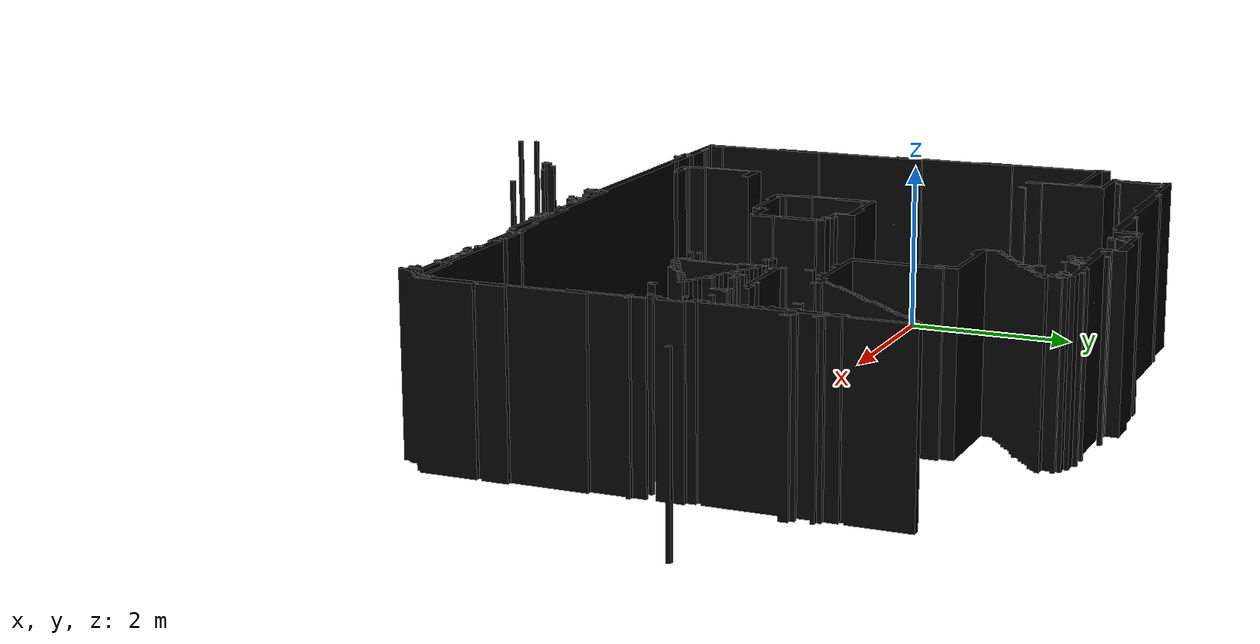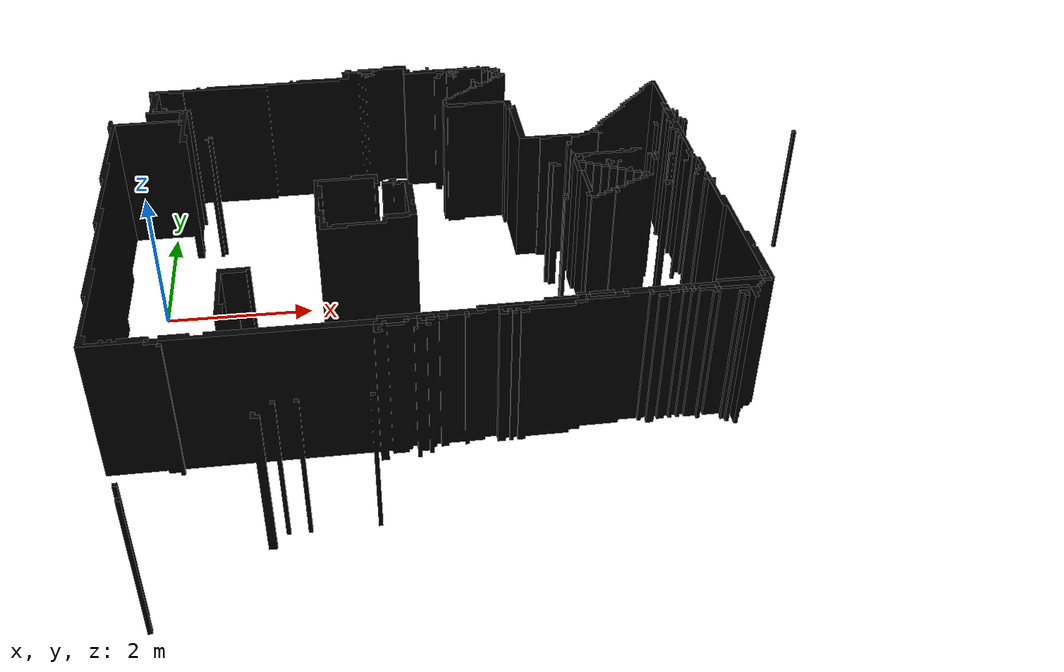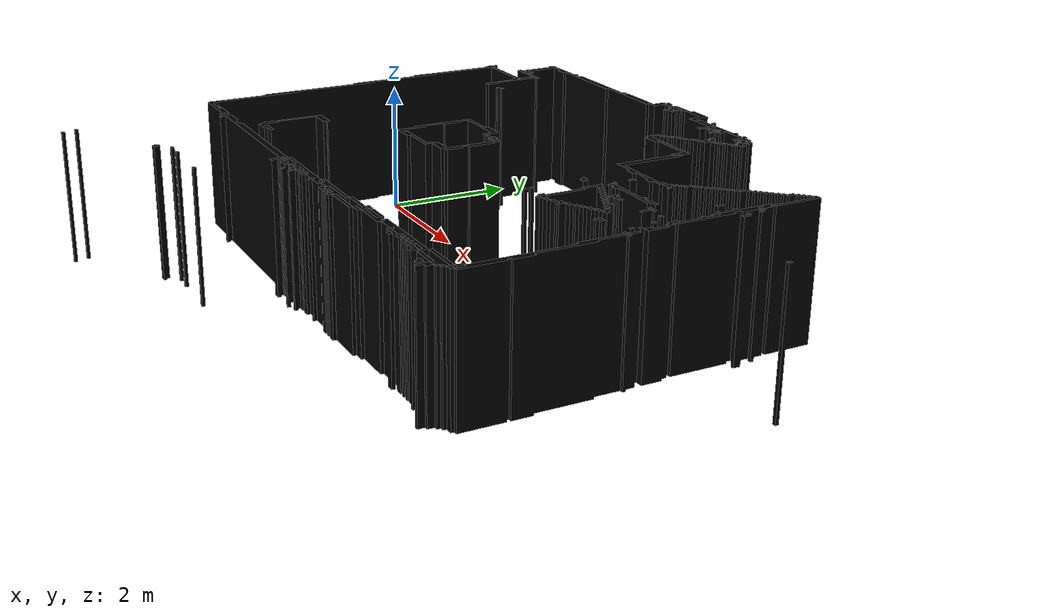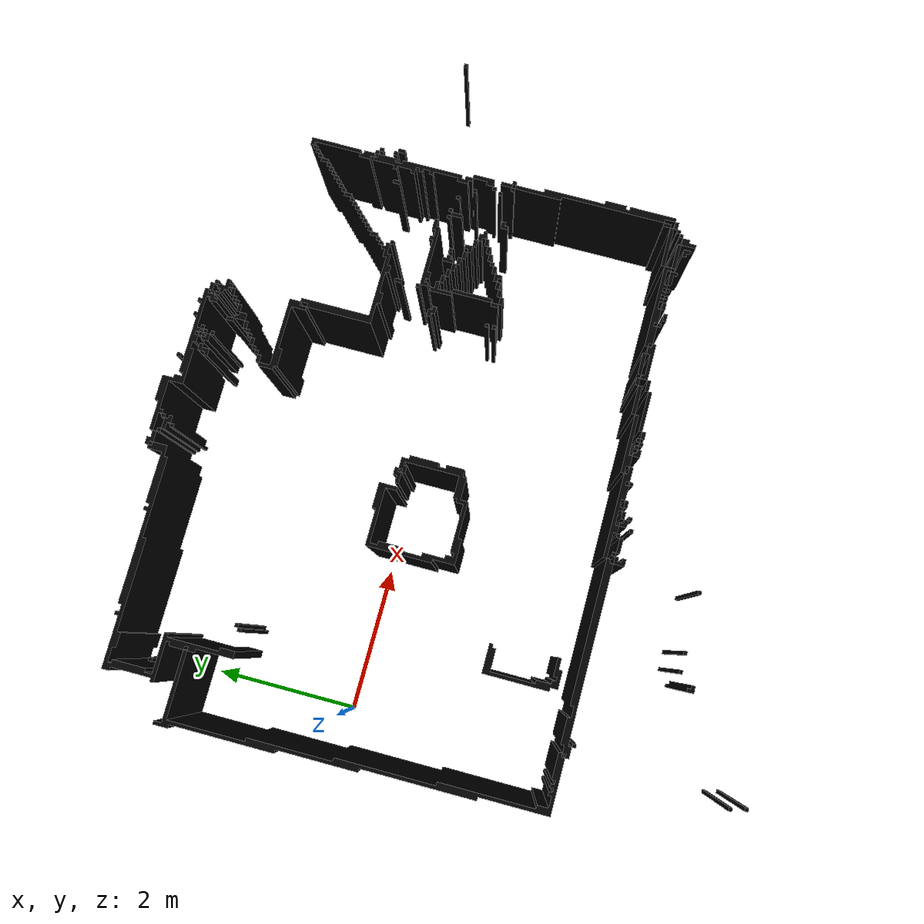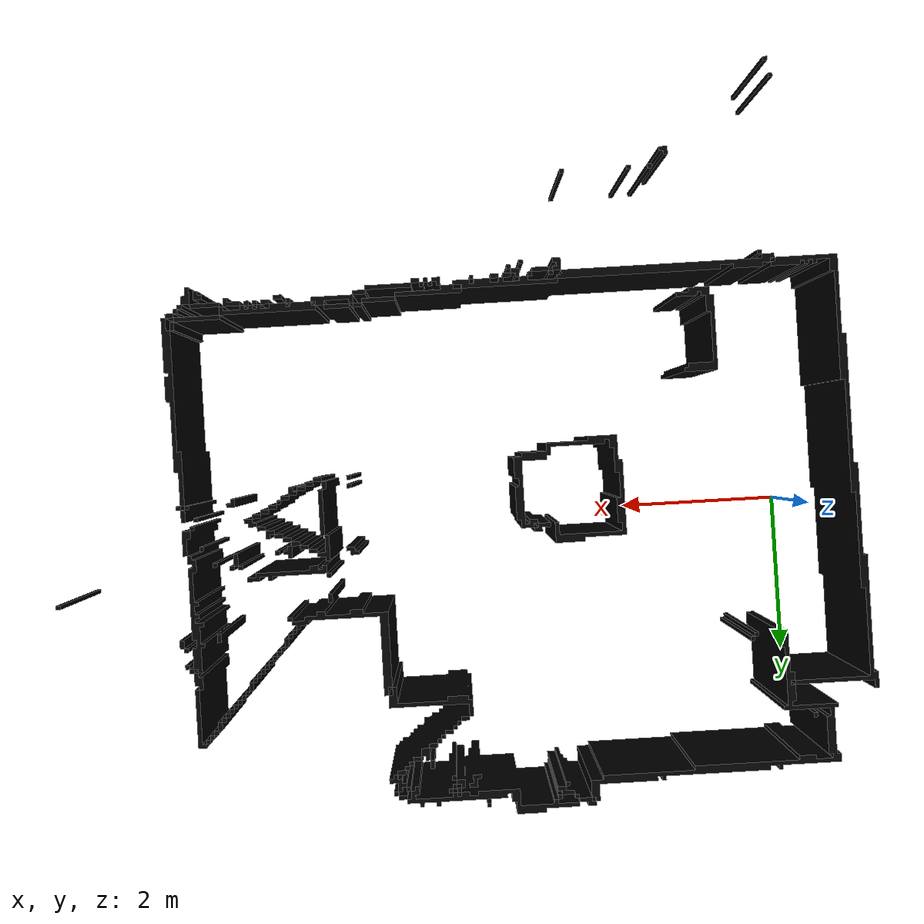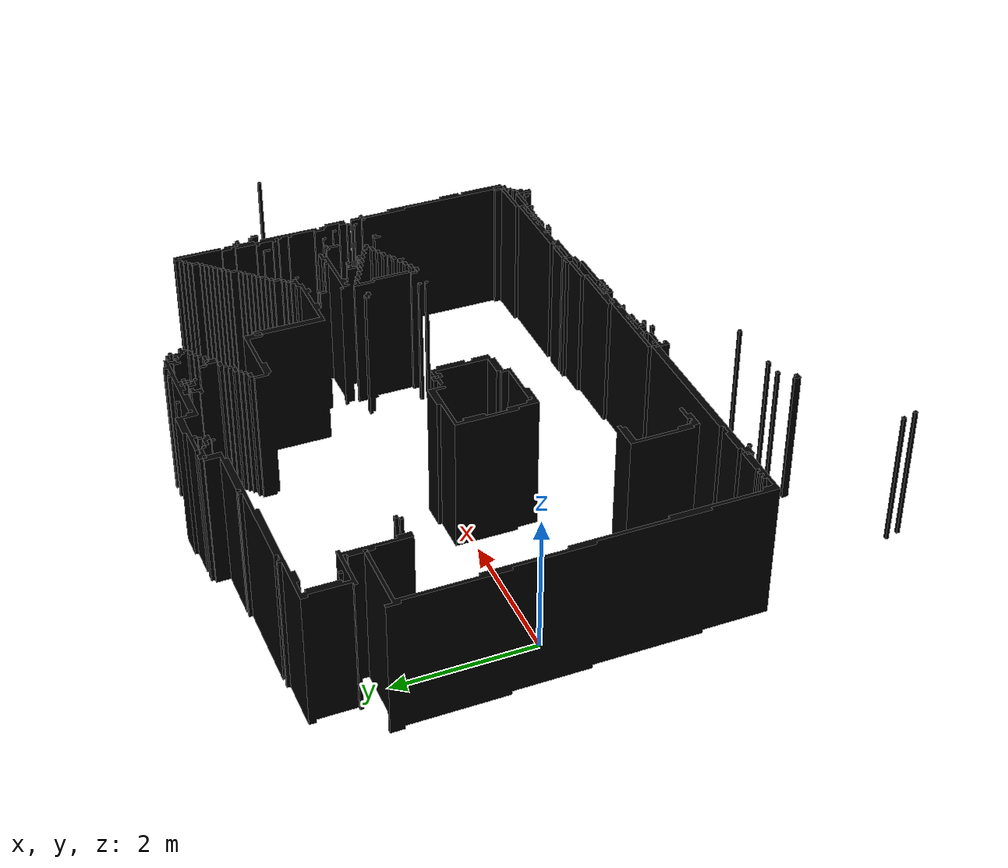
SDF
<?xml version='1.0' encoding='utf-8'?>
<sdf version="1.6">
  <world name="default">

    <gravity>0 0 -9.8</gravity>
    <physics default="0" name="default_physics" type="ode">
      <max_step_size>0.001</max_step_size>
      <real_time_factor>1</real_time_factor>
      <real_time_update_rate>1000</real_time_update_rate>
    </physics>

        <model name="map">
        <include>
            <uri>model://map</uri>
        </include>
        <pose frame="">0 0 0 0 0 0</pose>
	</model>

    <light name="Warehouse_CeilingLight_003" type="point">
      <pose frame="">0 0 9 0 0 0</pose>
      <diffuse>0.5 0.5 0.5 1</diffuse>
      <specular>0.2 0.2 0.2 1</specular>
      <attenuation>
        <range>80</range>
        <constant>0.3</constant>
        <linear>0.01</linear>
        <quadratic>0.001</quadratic>
      </attenuation>
      <cast_shadows>1</cast_shadows>
      <direction>0.1 0.1 -1</direction>
    </light>

    <gui fullscreen='0'>
      <camera name='user_camera'>
        <pose frame=''>-4.70385 10.895 16.2659 -0 0.921795 -1.12701</pose>
        <view_controller>orbit</view_controller>
        <projection_type>perspective</projection_type>
      </camera>
    </gui>

  </world>
</sdf>

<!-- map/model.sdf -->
<sdf version="1.6">
  <model name="apna_ghar">
    <link name="link">
      <inertial>
        <mass>1000</mass>
        <inertia>
          <ixx>840083.33</ixx>
          <ixy>0</ixy>
          <ixz>0</ixz>
          <iyy>475500.0</iyy>
          <iyz>0</iyz>
          <izz>1302083.33</izz>
        </inertia>
      </inertial>
      <collision name="collision">
        <geometry>
          <mesh>
            <uri>model://map/meshes/map.dae</uri>
            <scale>1 1 1</scale>
          </mesh>
        </geometry>
		<surface>
          <friction>
            <ode>
              <mu>0.5</mu>
              <mu2>0.5</mu2>
              <fdir1>0 0 0</fdir1>
              <slip1>0</slip1>
              <slip2>0</slip2>
            </ode>
        </friction>
          </surface>
      </collision>
      <visual name="visual">
	    <geometry>
          <mesh>
            <uri>model://map/meshes/map.dae</uri>
          </mesh>
        </geometry>
      <meta> <layer> 2 </layer></meta>
</visual>
    </link>
<static>1</static>
  </model>
</sdf>
